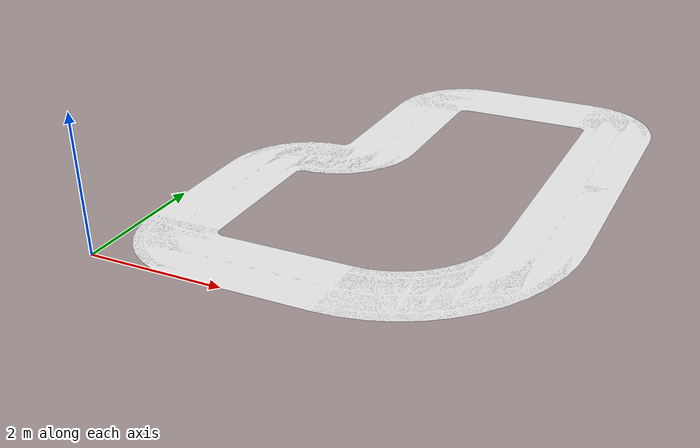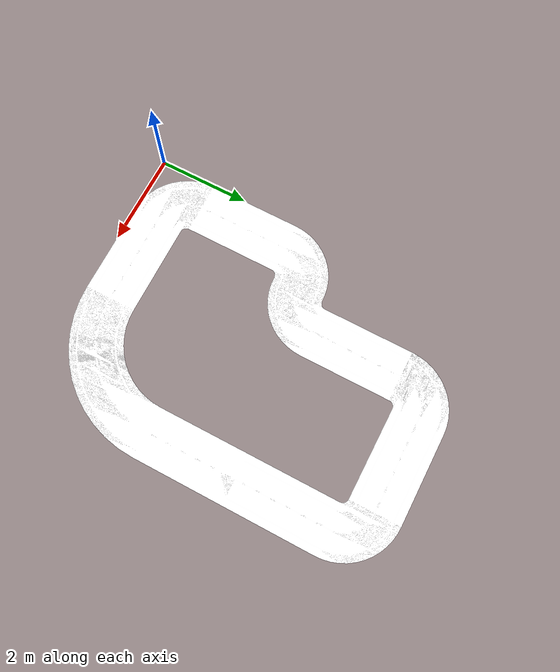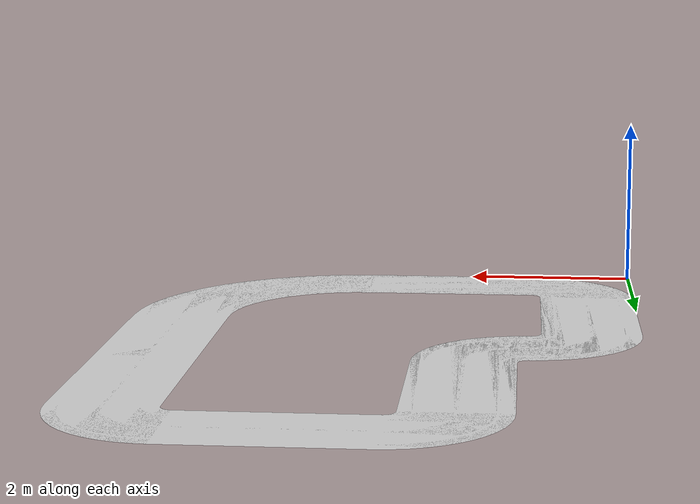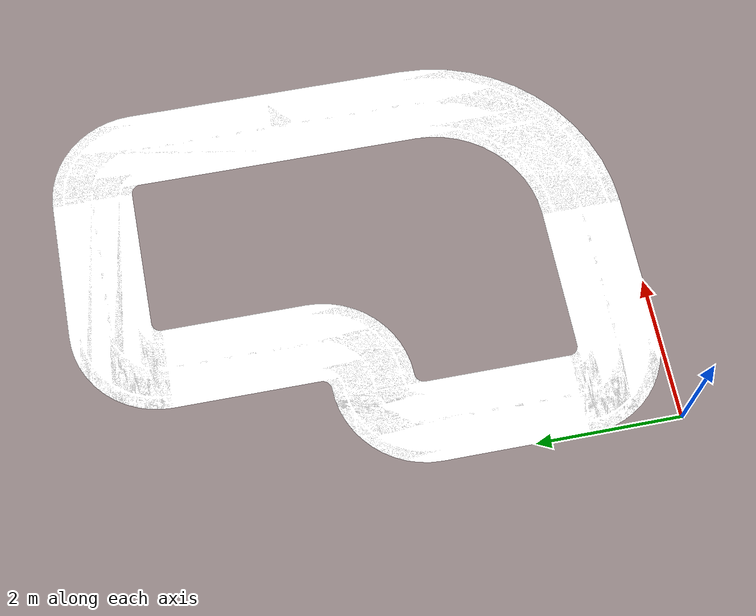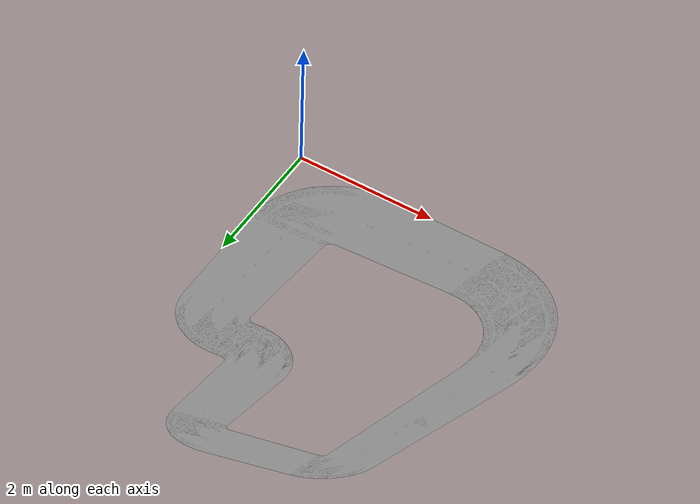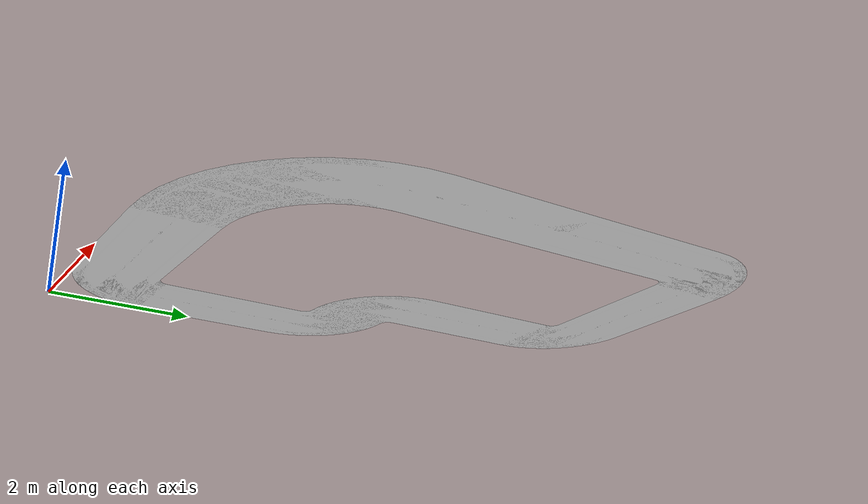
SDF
<?xml version="1.0" ?>
<sdf version="1.4">
  <model name="asphalt_plane">
    <static>true</static>
    <link name="link">
      <collision name='collision'>
          <geometry>
            <plane>
              <normal>0 0 1</normal>
              <size>5.91 7.9</size>
            </plane>
          </geometry>
          <surface>
            <friction>
              <ode>
                <mu>100</mu>
                <mu2>50</mu2>
              </ode>
            </friction>
            <bounce/>
            <contact>
              <ode/>
            </contact>
          </surface>
        </collision>
      <visual name="visual">
        <geometry>
          <mesh>
	         <uri>model://pista_doble_carril/meshes/pista_doble_carril.dae</uri>
         </mesh>
        </geometry>
      </visual>
      <velocity_decay>
          <linear>0</linear>
          <angular>0</angular>
      </velocity_decay>
      <self_collide>0</self_collide>
      <kinematic>0</kinematic>
      <gravity>1</gravity>
    </link>
  </model>
</sdf>
